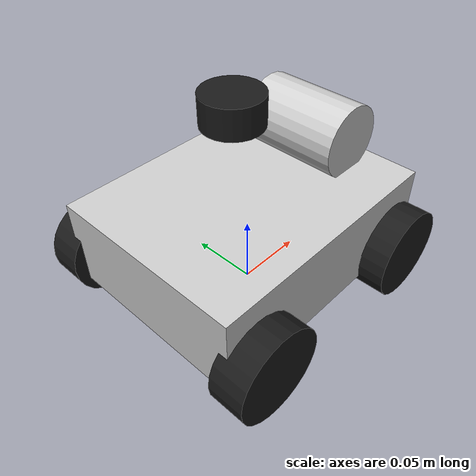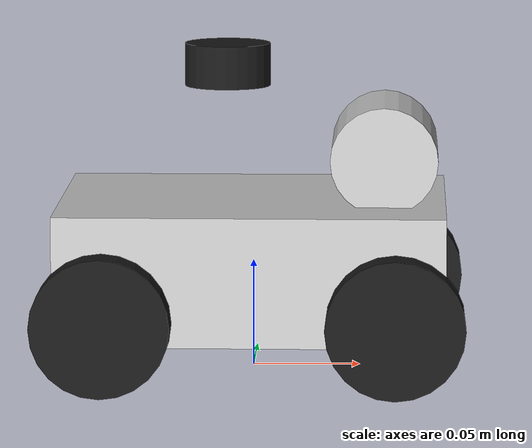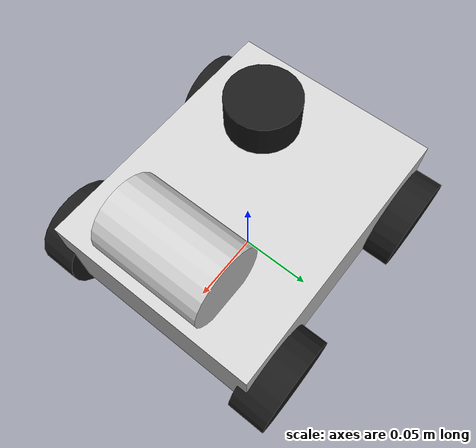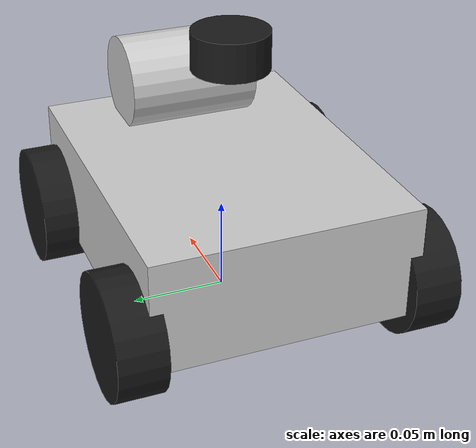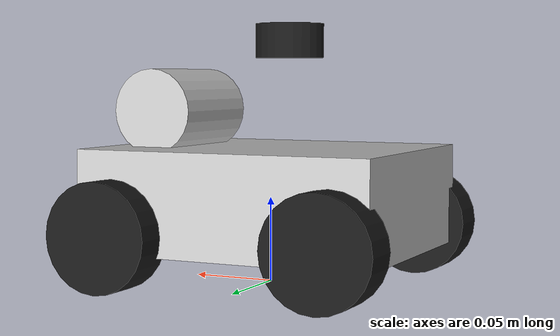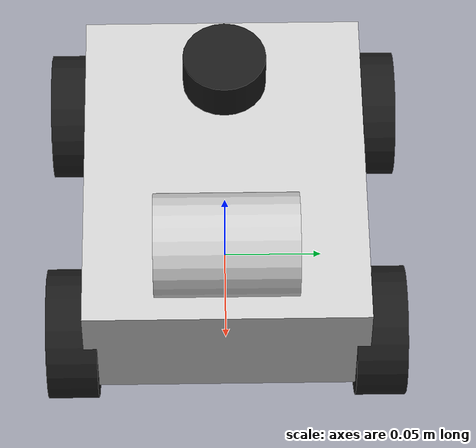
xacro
<?xml version="1.0"?>
<robot name="mentorpi" xmlns:xacro="http://ros.org/wiki/xacro" xmlns:gz="http://gazebosim.org/schema">

  <xacro:property name="base_length" value="0.18" />
  <xacro:property name="base_width" value="0.14" />
  <xacro:property name="base_height" value="0.06" />
  <xacro:property name="base_mass" value="1.5" />

  <xacro:property name="wheel_radius" value="0.032" />
  <xacro:property name="wheel_width" value="0.025" />
  <xacro:property name="wheel_pos_x" value="0.067" />
  <xacro:property name="wheel_pos_y" value="0.07591" />
  <xacro:property name="wheel_pos_z" value="-0.018408" />
  <xacro:property name="wheel_mass" value="0.1" />

  <xacro:property name="laser_pose">
    <origin xyz="-0.012242 0 0.092501" rpy="0 0 0"/>
  </xacro:property>

  <xacro:property name="depth_sensor_pose">
    <origin xyz="0.061376 0 0.051154" rpy="0 0 0"/>
  </xacro:property>

  <xacro:property name="M_PI" value="3.1415926535897931" />

  <material name="grey">
    <color rgba="0.8 0.8 0.8 1.0"/>
  </material>
  <material name="dark_grey">
    <color rgba="0.1 0.1 0.1 1.0"/>
  </material>

  <xacro:macro name="imu">
    <link name="imu_link"/>
    <joint name="imu_to_base_link" type="fixed">
      <parent link="base_link"/>
      <child link="imu_link"/>
      <origin xyz="0 0 0" rpy="0 0 0"/>
    </joint>

    <gazebo>
      <plugin filename="gz-sim-imu-system" name="gz::sim::systems::Imu">
      </plugin>
    </gazebo>

    <gazebo reference="imu_link">
      <sensor name="imu_sensor" type="imu">
        <topic>imu/data</topic>
        <update_rate>50</update_rate>
        <always_on>true</always_on>
        <visualize>true</visualize>
      </sensor>
    </gazebo>
  </xacro:macro>

  <xacro:macro name="omni_drive_controller" params="wheel_separation wheel_base wheel_radius">
    <gazebo>
      <plugin
        filename="gz-sim-mecanum-drive-system"
        name="gz::sim::systems::MecanumDrive">
        <topic>cmd_vel</topic>
        <odom_frame>odom</odom_frame>
        <robot_base_frame>base_footprint</robot_base_frame>
        <child_frame_id>base_footprint</child_frame_id>
        <odom_topic>odom/unfiltered</odom_topic>
        <front_left_joint>front_left_wheel_joint</front_left_joint>
        <front_right_joint>front_right_wheel_joint</front_right_joint>
        <back_left_joint>rear_left_wheel_joint</back_left_joint>
        <back_right_joint>rear_right_wheel_joint</back_right_joint>
        <wheel_separation>${wheel_separation}</wheel_separation>
        <wheelbase>${wheel_base}</wheelbase>
        <wheel_radius>${wheel_radius}</wheel_radius>
        <odom_publish_frequency>50</odom_publish_frequency>
      </plugin>
    </gazebo>

    <gazebo>
      <plugin
        filename="gz-sim-odometry-publisher-system"
        name="gz::sim::systems::OdometryPublisher" >
          <odom_topic>odom/unfiltered</odom_topic>
          <odom_frame>odom</odom_frame>
          <robot_base_frame>base_footprint</robot_base_frame>
          <publish_tf>true</publish_tf>
          <odom_publish_frequency>50</odom_publish_frequency>
          <xyz_offset>0 0 0</xyz_offset>
          <rpy_offset>0 0 0</rpy_offset>
      </plugin>
    </gazebo>

    <gazebo>
      <plugin filename="gz-sim-joint-state-publisher-system"
        name="gz::sim::systems::JointStatePublisher">
        <topic>joint_states</topic>
        <update_rate>100</update_rate>
        <joint_name>front_left_wheel_joint</joint_name>
        <joint_name>front_right_wheel_joint</joint_name>
        <joint_name>rear_left_wheel_joint</joint_name>
        <joint_name>rear_right_wheel_joint</joint_name>
      </plugin>
    </gazebo>
  </xacro:macro>

  <gazebo>
    <plugin
      filename="gz-sim-sensors-system"
      name="gz::sim::systems::Sensors">
      <render_engine>ogre2</render_engine>
    </plugin>
  </gazebo>

  <link name="base_footprint"/>

  <link name="base_link">
    <inertial>
      <origin xyz="0 0 0.01" rpy="0 0 0"/>
      <mass value="${base_mass}"/>
      <inertia ixx="0.01" ixy="0" ixz="0"
               iyy="0.01" iyz="0"
               izz="0.02"/>
    </inertial>

    <visual>
      <origin xyz="0 0 0" rpy="0 0 0"/>
      <geometry>
        <box size="${base_length} ${base_width} ${base_height}"/>
      </geometry>
      <material name="grey"/>
    </visual>

    <collision>
      <origin xyz="0 0 0.02" rpy="0 0 0"/>
      <geometry>
        <box size="${base_length} ${base_width} ${base_height}"/>
      </geometry>
    </collision>
  </link>

  <gazebo reference="base_link">
    <visual>
      <material>
        <ambient>0.8 0.8 0.8 1</ambient>
        <diffuse>0.8 0.8 0.8 1</diffuse>
        <specular>0.8 0.8 0.8 1</specular>
      </material>
    </visual>
  </gazebo>

  <joint name="base_to_footprint" type="fixed">
    <parent link="base_footprint"/>
    <child link="base_link"/>
    <origin xyz="0 0 ${wheel_radius - wheel_pos_z}" rpy="0 0 0"/>
  </joint>

  <xacro:macro name="mentorpi_mecanum_wheel" params="side radius width pos_x pos_y pos_z mass">
    <link name="${side}_wheel_link">
      <visual>
        <origin xyz="0 0 0" rpy="${pi/2} 0 0"/>
        <geometry>
            <cylinder radius="${radius}" length="${width}"/>
        </geometry>
        <material name="dark_grey"/>
      </visual>

      <collision>
        <origin xyz="0 0 0" rpy="${pi/2} 0 0"/>
        <geometry>
          <cylinder radius="${radius}" length="${width}"/>
        </geometry>
      </collision>

      <inertial>
        <origin xyz="0 0 0" rpy="0 0 0"/>
        <mass value="${mass}"/>
        <inertia ixx="${(2/5) * mass * (radius * radius)}" ixy="0" ixz="0"
                 iyy="${(2/5) * mass * (radius * radius)}" iyz="0"
                 izz="${(2/5) * mass * (radius * radius)}" />
      </inertial>
    </link>

    <gazebo reference="${side}_wheel_link">
      <collision>
        <surface>
          <friction>
            <ode>
              <mu>1.5</mu>
              <mu2>0.7</mu2>
              <kp>200000.0</kp>
              <kd>5000.0</kd>
              <xacro:if value="${side == 'front_left'}">
                <fdir1 gz:expressed_in="base_footprint">1 -1 0</fdir1>
              </xacro:if>
              <xacro:if value="${side == 'rear_left'}">
                <fdir1 gz:expressed_in="base_footprint">1 1 0</fdir1>
              </xacro:if>
              <xacro:if value="${side == 'front_right'}">
                <fdir1 gz:expressed_in="base_footprint">1 1 0</fdir1>
              </xacro:if>
              <xacro:if value="${side == 'rear_right'}">
                <fdir1 gz:expressed_in="base_footprint">1 -1 0</fdir1>
              </xacro:if>
            </ode>
          </friction>
        </surface>
      </collision>
      <visual>
        <material>
          <ambient>0.1 0.1 0.1 1</ambient>
          <diffuse>0.1 0.1 0.1 1</diffuse>
          <specular>0.1 0.1 0.1 1</specular>
        </material>
      </visual>
    </gazebo>

    <joint name="${side}_wheel_joint" type="continuous">
      <axis xyz="0 1 0" />
      <parent link="base_link"/>
      <child link="${side}_wheel_link"/>
      <origin xyz="${pos_x} ${pos_y} ${pos_z}" rpy="0 0 0"/>
    </joint>
  </xacro:macro>

  <xacro:mentorpi_mecanum_wheel
    side="front_left"
    radius="${wheel_radius}"
    width="${wheel_width}"
    pos_x="${wheel_pos_x}"
    pos_y="${wheel_pos_y}"
    pos_z="${wheel_pos_z}"
    mass="${wheel_mass}"
  />

  <xacro:mentorpi_mecanum_wheel
    side="front_right"
    radius="${wheel_radius}"
    width="${wheel_width}"
    pos_x="${wheel_pos_x}"
    pos_y="${-wheel_pos_y}"
    pos_z="${wheel_pos_z}"
    mass="${wheel_mass}"
  />

  <xacro:mentorpi_mecanum_wheel
    side="rear_left"
    radius="${wheel_radius}"
    width="${wheel_width}"
    pos_x="${-wheel_pos_x}"
    pos_y="${wheel_pos_y}"
    pos_z="${wheel_pos_z}"
    mass="${wheel_mass}"
  />

  <xacro:mentorpi_mecanum_wheel
    side="rear_right"
    radius="${wheel_radius}"
    width="${wheel_width}"
    pos_x="${-wheel_pos_x}"
    pos_y="${-wheel_pos_y}"
    pos_z="${wheel_pos_z}"
    mass="${wheel_mass}"
  />

  <xacro:imu/>

  <link name="laser">
    <visual>
      <origin xyz="0 0 0" rpy="0 0 0"/>
      <geometry>
        <cylinder radius="0.02" length="0.02"/>
      </geometry>
      <material name="dark_grey"/>
    </visual>

    <collision>
      <origin xyz="0 -0.018 0" rpy="0 0 0"/>
      <geometry>
        <cylinder radius="0.035" length="0.04"/>
      </geometry>
    </collision>

    <inertial>
      <origin xyz="0 0 0" rpy="0 0 0"/>
      <mass value="0.1"/>
      <inertia ixx="0.00005" ixy="0" ixz="0"
               iyy="0.00005" iyz="0"
               izz="0.00005"/>
    </inertial>
  </link>

  <gazebo reference="laser">
    <visual>
      <material>
        <ambient>0.1 0.1 0.1 1</ambient>
        <diffuse>0.1 0.1 0.1 1</diffuse>
        <specular>0.1 0.1 0.1 1</specular>
      </material>
    </visual>
  </gazebo>

  <joint name="laser_to_base_link" type="fixed">
    <parent link="base_link"/>
    <child link="laser"/>
    <xacro:insert_block name="laser_pose" />
  </joint>

  <gazebo reference="laser">
    <sensor name="gpu_lidar" type="gpu_lidar">
      <topic>scan</topic>
      <gz_frame_id>laser</gz_frame_id>
      <update_rate>10</update_rate>
      <always_on>true</always_on>
      <visualize>false</visualize> <lidar>
        <scan>
          <horizontal>
            <samples>360</samples>
            <resolution>1</resolution>
            <min_angle>0.0</min_angle>
            <max_angle>6.28318</max_angle>
          </horizontal>
          <vertical>
            <samples>1</samples>
            <resolution>1</resolution>
            <min_angle>0.0</min_angle>
            <max_angle>0.0</max_angle>
          </vertical>
        </scan>
        <range>
          <min>0.08</min>
          <max>12.0</max>
          <resolution>0.01</resolution>
        </range>
      </lidar>
    </sensor>
  </gazebo>

  <link name="camera_link">
    <visual>
      <origin xyz="0 0 0" rpy="${pi/2} 0 0"/>
      <geometry>
        <cylinder radius="0.025" length="0.07"/>
      </geometry>
      <material name="grey"/>
    </visual>

    <collision>
      <origin xyz="0 0 0" rpy="0 0 0"/>
      <geometry>
        <box size="0.03 0.08 0.025"/>
      </geometry>
    </collision>

    <inertial>
      <origin xyz="0 0 0" rpy="0 0 0"/>
      <mass value="0.135"/>
      <inertia ixx="${(1/12) * 0.135 * ((0.124  * 0.124)  + (0.030 * 0.030))}" ixy="0.0" ixz="0.0"
               iyy="${(1/12) * 0.135 * ((0.030 * 0.030) + (0.030 * 0.030))}" iyz="0.0"
               izz="${(1/12) * 0.135 * ((0.030 * 0.030) + (0.124  * 0.124))}"/>
    </inertial>
  </link>

  <gazebo reference="camera_link">
    <visual>
      <material>
        <ambient>0.8 0.8 0.8 1</ambient>
        <diffuse>0.8 0.8 0.8 1</diffuse>
        <specular>0.8 0.8 0.8 1</specular>
      </material>
    </visual>
  </gazebo>

  <joint name="camera_to_base_link" type="fixed">
    <parent link="base_link"/>
    <child link="camera_link"/>
    <xacro:insert_block name="depth_sensor_pose" />
  </joint>

  <link name="camera_depth_link"/>

  <joint name="camera_depth_joint" type="fixed">
    <origin xyz="0 0 0" rpy="0 0 0"/>
    <parent link="camera_link"/>
    <child link="camera_depth_link"/>
  </joint>

  <gazebo reference="camera_link">
    <sensor name="camera" type="rgbd_camera">
      <topic>camera</topic>
      <update_rate>10.0</update_rate> <always_on>true</always_on>
      <visualize>true</visualize>
      <camera>
        <optical_frame_id>camera_depth_link</optical_frame_id>
        <horizontal_fov>1.5</horizontal_fov>
        <image>
          <width>320</width>
          <height>240</height>
          <format>R8G8B8</format>
        </image>
        <clip>
          <near>0.02</near>
          <far>100</far>
        </clip>
      </camera>
    </sensor>
  </gazebo>

  <xacro:omni_drive_controller
    wheel_separation="${wheel_pos_y * 2}"
    wheel_base="${wheel_pos_x * 2}"
    wheel_radius="${wheel_radius}"
  />
</robot>
